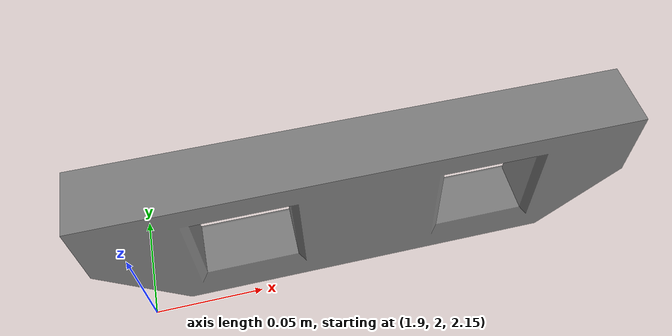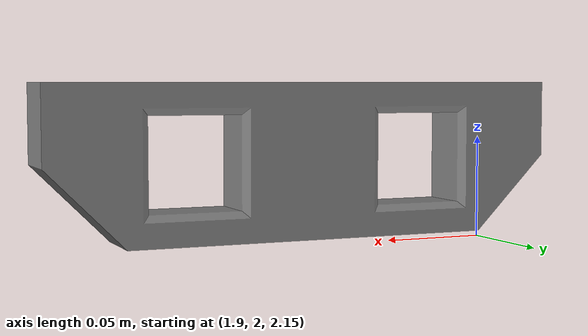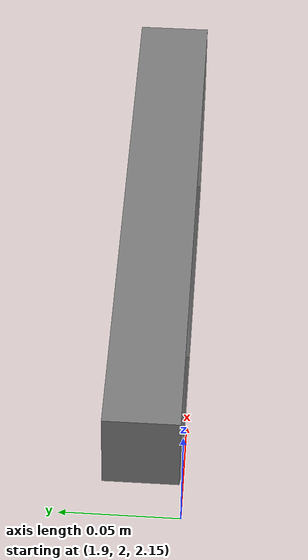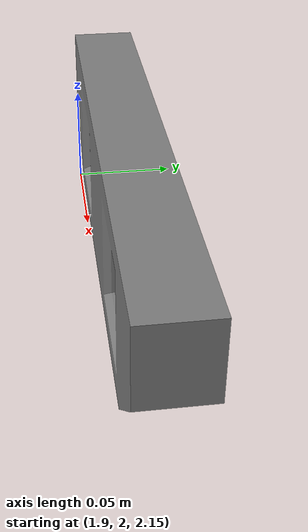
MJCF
<mujoco model="Brecke-1">
  <asset>
    <mesh
      file="../../../../../assets/cranfield_assembly_benchmark/assets/Brecke-1/Brecke-1.obj"
      scale="0.001 0.001 0.001">
      <plugin instance="sdf" />
    </mesh>
  </asset>
  <worldbody>
    <body name="Brecke-1" pos="2 2 2">
      <freejoint />
      <geom type="mesh" mesh="Brecke-1" size="0.01">
        <plugin instance="sdf" />
      </geom>
    </body>
  </worldbody>
</mujoco>
